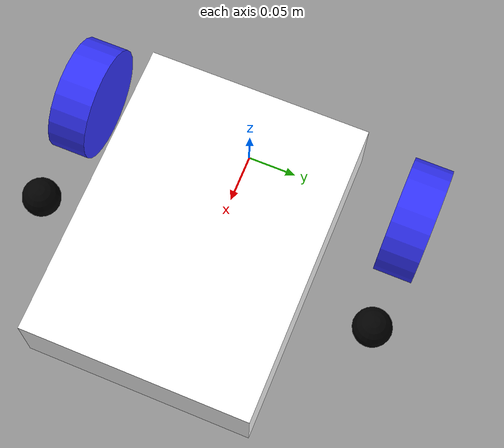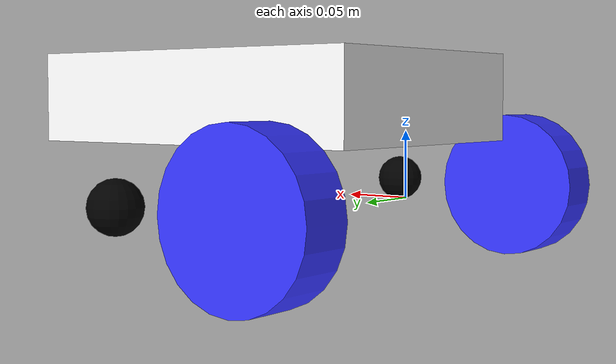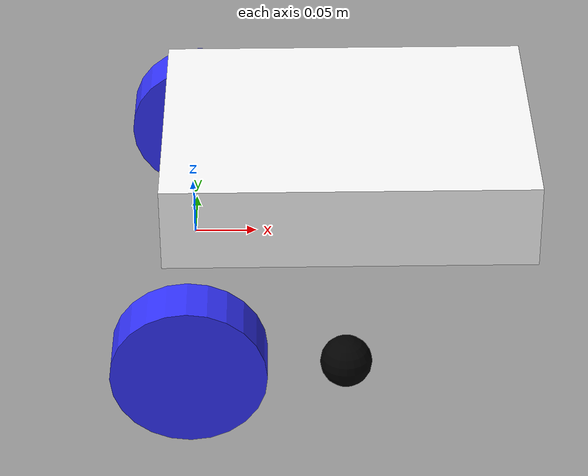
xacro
<?xml version="1.0"?>
<robot xmlns:xacro="http://www.ros.org/wiki/xacro" >

    <xacro:include filename="inertial_macros.xacro"/>

    <material name="white">
        <color rgba="1 1 1 1" />
    </material>

    <material name="orange">
        <color rgba="1 0.3 0.1 1"/>
    </material>

    <material name="blue">
        <color rgba="0.2 0.2 1 1"/>
    </material>

    <material name="black">
        <color rgba="0 0 0 1"/>
    </material>

    <material name="red">
        <color rgba="1 0 0 1"/>
    </material>

    <!-- BASE LINK -->

    <link name="base_link">

    </link>

    <!-- BASE_FOOTPRINT LINK -->

    <joint name="base_footprint_joint" type="fixed">
        <parent link="base_link"/>
        <child link="base_footprint"/>
        <origin xyz="0 0 0" rpy="0 0 0"/>
    </joint>

    <link name="base_footprint">
    </link>

    <!-- CHASSIS LINK -->

    <joint name="chassis_joint" type="fixed">
        <parent link="base_link"/>
        <child link="chassis"/>
        <origin xyz="-0.025 0 0"/>
    </joint>

    <link name="chassis">
        <visual>
            <origin xyz="0.15 0 0.075"/>
            <geometry>
                <box size="0.295 0.22 0.07"/>
            </geometry>
            <material name="white"/>
        </visual>
        <collision>
            <origin xyz="0.15 0 0.075"/>
            <geometry>
                <box size="0.295 0.22 0.07"/>
            </geometry>
        </collision>
        <xacro:inertial_box mass="2.2" x="0.295" y="0.22" z="0.07">
            <origin xyz="0.15 0 0.075" rpy="0 0 0"/>
        </xacro:inertial_box>
    </link>

    <!-- LEFT WHEEL LINK -->

    <joint name="left_wheel_joint" type="continuous">
        <parent link="base_link"/>
        <child link="left_wheel"/>
        <!-- set rpy to rotate the cylinder around x axis, for left use negative -->
        <origin xyz="0 0.178 0" rpy="-${pi/2} 0 0" />
        <axis xyz="0 0 1"/>
    </joint>

    <link name="left_wheel">
        <visual>
            <geometry>
                <cylinder radius="0.06" length="0.04"/>
            </geometry>
            <material name="blue"/>
        </visual>
        <collision>
            <geometry>
                <cylinder radius="0.06" length="0.04"/>
            </geometry>
        </collision>
        <xacro:inertial_cylinder mass="0.1" length="0.04" radius="0.06">
            <origin xyz="0 0 0" rpy="0 0 0"/>
        </xacro:inertial_cylinder>
    </link>

    <!-- RIGHT WHEEL LINK -->

    <joint name="right_wheel_joint" type="continuous">
        <parent link="base_link"/>
        <child link="right_wheel"/>
        <!-- set rpy to rotate the cylinder around x axis, for right use positive -->
        <origin xyz="0 -0.178 0" rpy="${pi/2} 0 0" />
        <axis xyz="0 0 -1"/>
    </joint>

    <link name="right_wheel">
        <visual>
            <geometry>
                <cylinder radius="0.06" length="0.04"/>
            </geometry>
            <material name="blue"/>
        </visual>
        <collision>
            <geometry>
                <cylinder radius="0.06" length="0.04"/>
            </geometry>
        </collision>
        <xacro:inertial_cylinder mass="0.1" length="0.04" radius="0.06">
            <origin xyz="0 0 0" rpy="0 0 0"/>
        </xacro:inertial_cylinder>
    </link>

    <!-- LEFT CASTER WHEEL LINK -->

    <joint name="left_caster_wheel_joint" type="fixed">
        <parent link="base_link"/>
        <child link="left_caster_wheel"/>
        <origin xyz="0.12 0.178 0"/>
    </joint>

    <link name="left_caster_wheel">
        <visual>
            <geometry>
                <sphere radius="0.02"/>
            </geometry>
            <material name="black"/>
        </visual>
        <collision>
            <geometry>
                <sphere radius="0.02"/>
            </geometry>
        </collision>
        <xacro:inertial_sphere mass="0.1" radius="0.02">
            <origin xyz="0.12 0.178 0" rpy="0 0 0"/>
        </xacro:inertial_sphere>
    </link>

        <!-- RIGHT CASTER WHEEL LINK -->

    <joint name="right_caster_wheel_joint" type="fixed">
        <parent link="base_link"/>
        <child link="right_caster_wheel"/>
        <origin xyz="0.12 -0.178 0"/>
    </joint>

    <link name="right_caster_wheel">
        <visual>
            <geometry>
                <sphere radius="0.02"/>
            </geometry>
            <material name="black"/>
        </visual>
        <collision>
            <geometry>
                <sphere radius="0.02"/>
            </geometry>
        </collision>
        <xacro:inertial_sphere mass="0.1" radius="0.02">
            <origin xyz="0.12 -0.178 0" rpy="0 0 0"/>
        </xacro:inertial_sphere>
    </link>

</robot>
